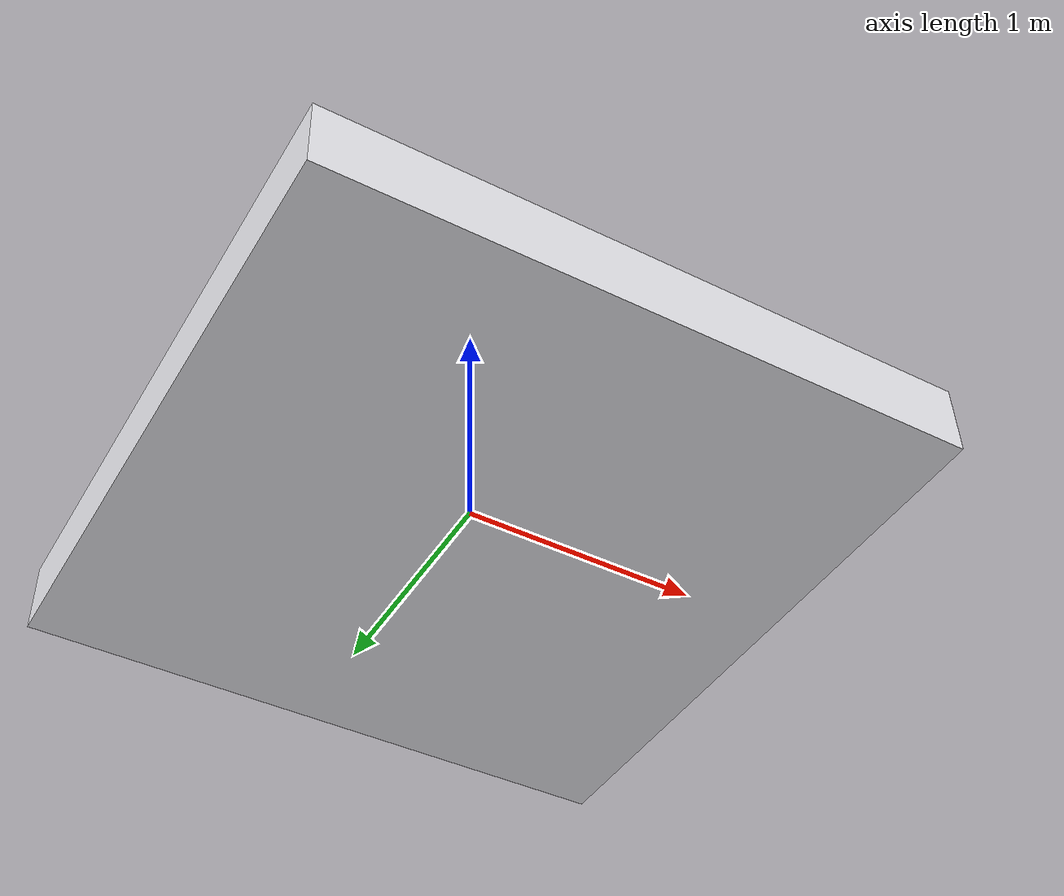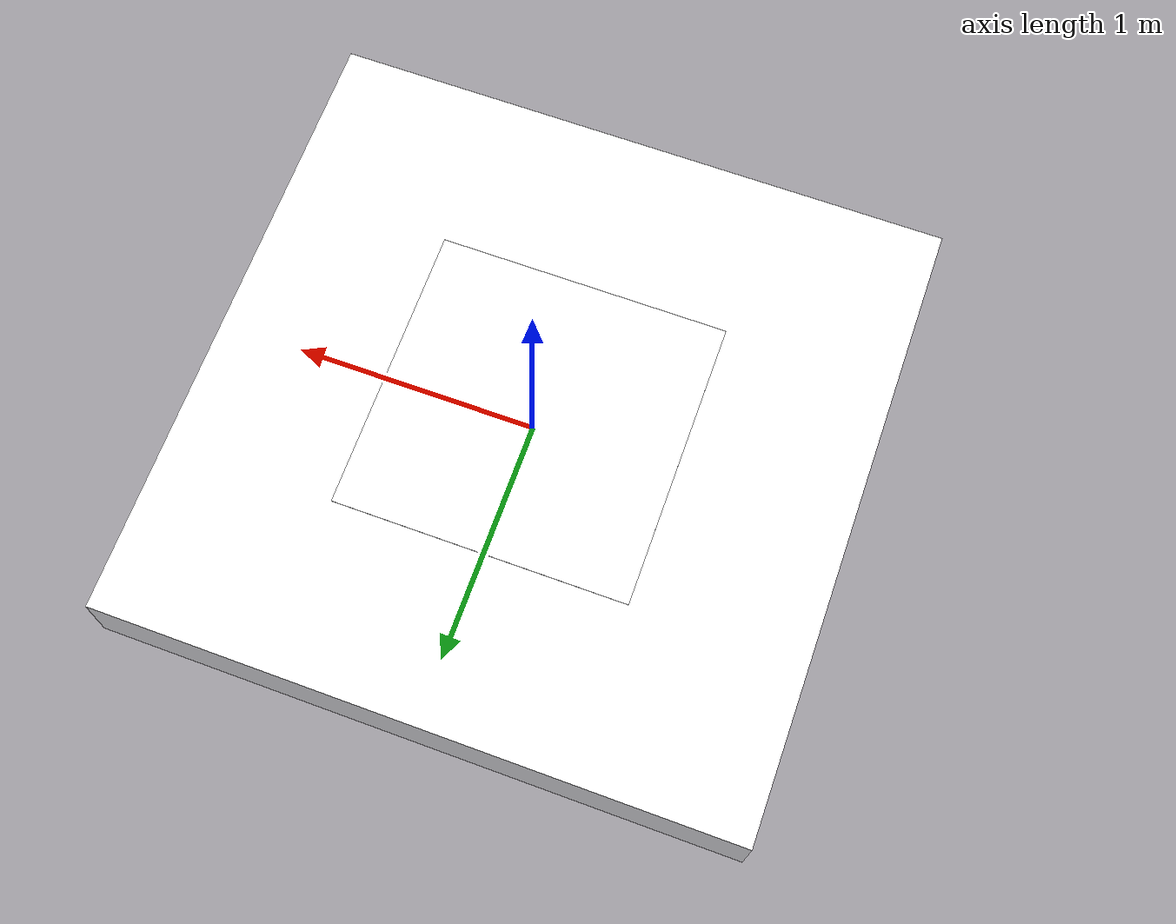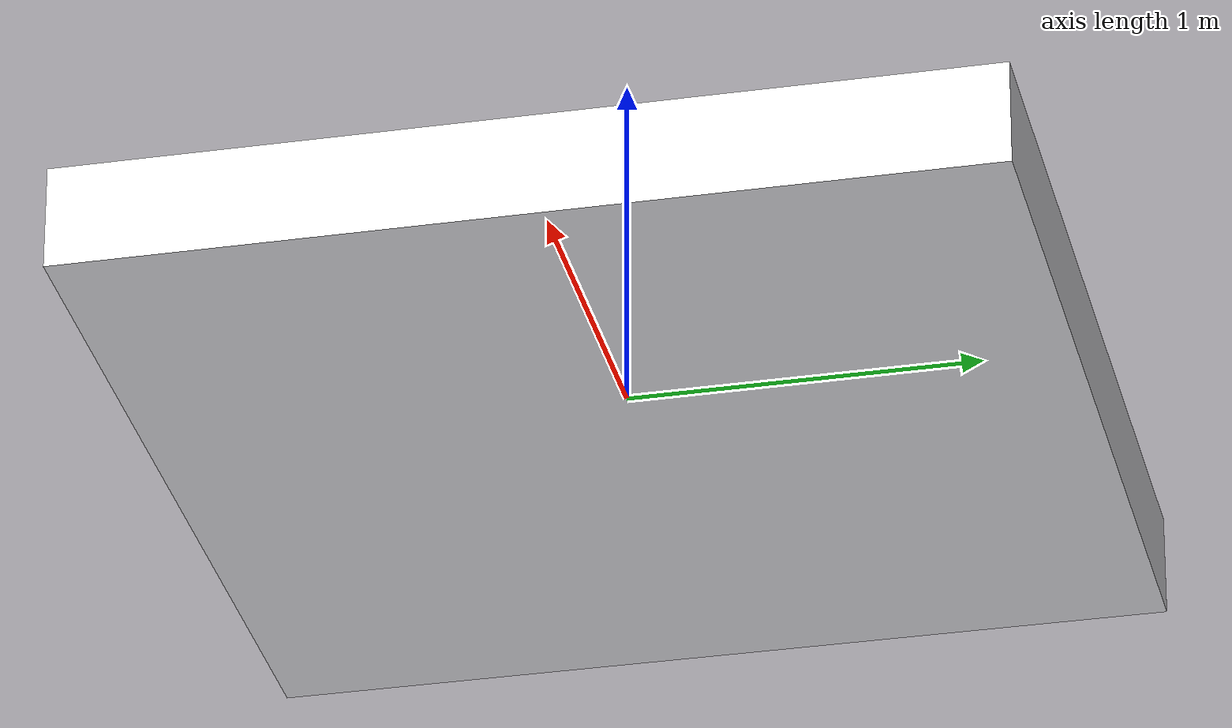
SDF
<?xml version="1.0"?>
<sdf version="1.9">
  <model name="landing_dock">
    <static>true</static>
    <link name="base">
      <collision name="platform_col">
        <geometry>
          <box><size>2.6 2.6 0.3</size></box>
        </geometry>
      </collision>
      <visual name="platform">
        <geometry>
          <box><size>2.6 2.6 0.3</size></box>
        </geometry>
        <material>
          <ambient>0.9 0.9 0.92 1</ambient>
          <diffuse>0.95 0.95 0.97 1</diffuse>
          <specular>0.1 0.1 0.1 1</specular>
        </material>
      </visual>
      <!-- thin tag face lying on the platform top; the albedo map paints
           the AprilTag across each face, and only the top is ever seen -->
      <visual name="apriltag">
        <pose>0 0 0.1505 0 0 0</pose>
        <geometry>
          <box><size>1.2 1.2 0.001</size></box>
        </geometry>
        <material>
          <ambient>1 1 1 1</ambient>
          <diffuse>1 1 1 1</diffuse>
          <specular>0 0 0 1</specular>
          <pbr>
            <metal>
              <albedo_map>materials/textures/apriltag_36h11_id0.png</albedo_map>
              <metalness>0.0</metalness>
              <roughness>1.0</roughness>
            </metal>
          </pbr>
        </material>
      </visual>
    </link>
  </model>
</sdf>
